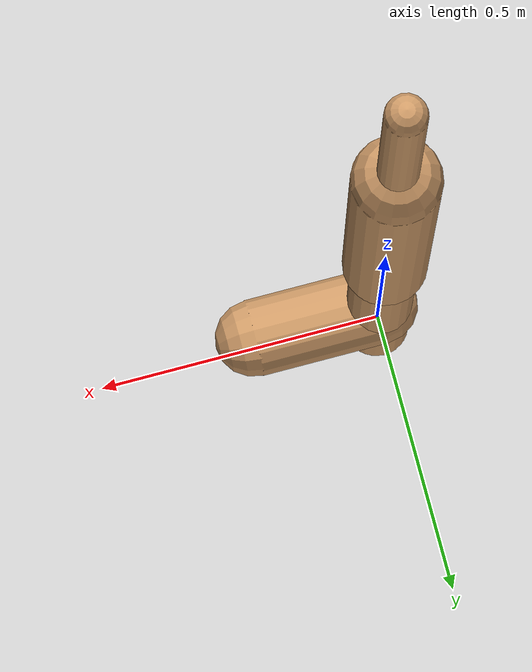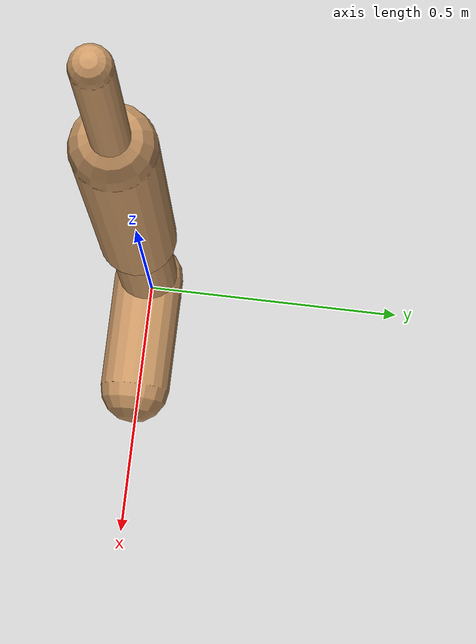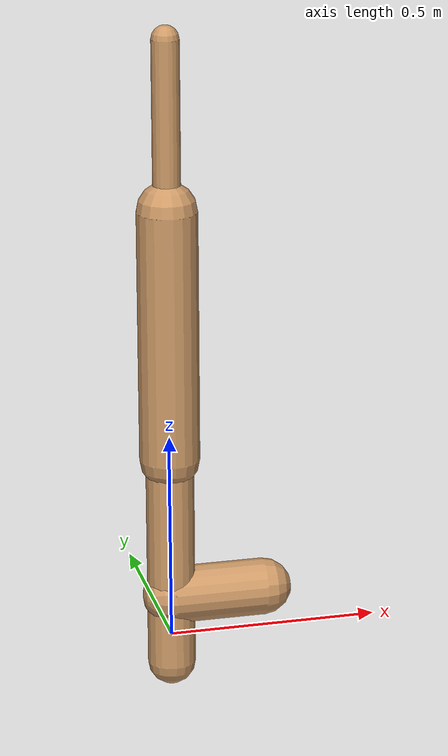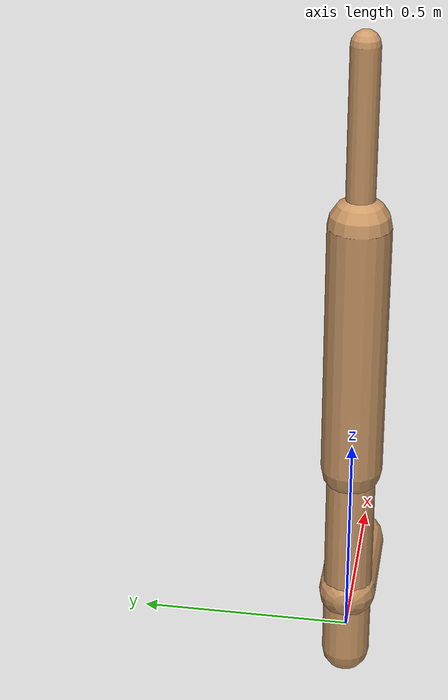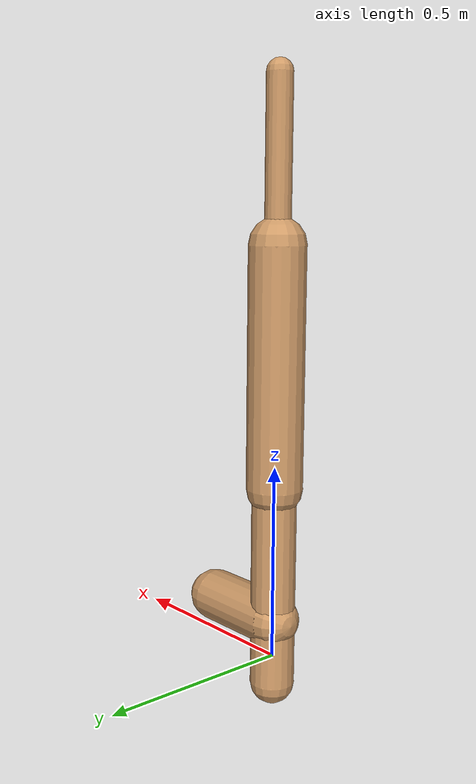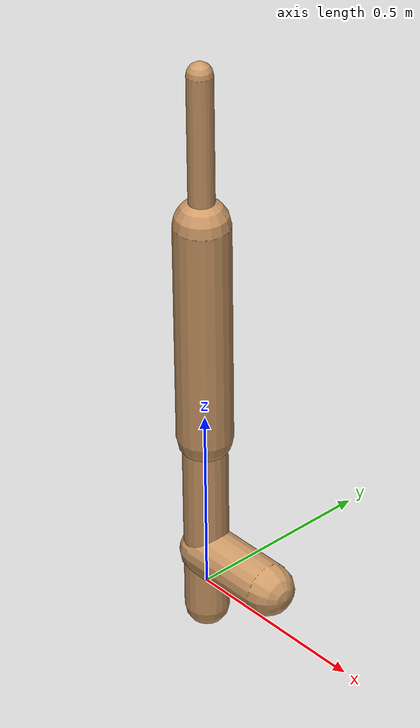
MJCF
<mujoco model="walker2d">
  <compiler angle="degree" coordinate="global" inertiafromgeom="true" />
  <default>
    <joint armature="0.01" damping=".1" limited="true" />
    <geom conaffinity="0" condim="3" contype="1" density="1000" friction="0.8 .1 .1" rgba="0.8 0.6 .4 1" />
  </default>
  <option integrator="RK4" timestep="0.002" />
  <worldbody>

    <body name="torso" pos="0 0 0.32049254809197397">
      <joint armature="0" axis="1 0 0" damping="0" limited="false" name="ignorex" pos="0 0 0" stiffness="0" type="slide" />
      <joint armature="0" axis="0 0 1" damping="0" limited="false" name="ignorez" pos="0 0 0" ref="1.25" stiffness="0" type="slide" />
      <joint armature="0" axis="0 1 0" damping="0" limited="false" name="ignorey" pos="0 0 0" stiffness="0" type="hinge" />
      <geom fromto="0 0 1.45 0 0 1.05" name="torso_geom" size="0.032695911750194706" type="capsule" />
      <body name="thigh">
        <joint axis="0 -1 0" name="thigh_joint" pos="0 0 1.05" range="-150 0" type="hinge" />
        <geom fromto="0.0 0.0 1.05 0.0 0.0 0.448187740377486" name="thigh_geom" size="0.07147645872417387" type="capsule" />
        <body name="leg" pos="0.0 0.0 -0.151812259622514">
          <joint axis="0 -1 0" name="leg_joint" pos="0 0 0.6" range="-150 0" type="hinge" />
          <geom fromto="0.0 0.0 0.6 0.0 0.0 -0.06868028846945998" name="leg_geom" size="0.057181166979339094" type="capsule" />
          <body name="foot" pos="0.0 0.0 -0.16868028846945998">
            <joint axis="0 -1 0" name="foot_joint" pos="0 0 0.1" range="-45 45" type="hinge" />
            <geom fromto="-0.0 0.0 0.1 0.22473910172038547 0.0 0.1" name="foot_geom" size="0.06799279479499891" type="capsule" />
          </body>
        </body>
      </body>

      <body name="thigh_left">
        <joint axis="0 -1 0" name="thigh_left_joint" pos="0 0 1.05" range="-150 0" type="hinge" />
        <geom fromto="0.0 0.0 1.05 0.0 0.0 0.448187740377486" name="thigh_left_geom" rgba=".7 .3 .6 1" size="0.07147645872417387" type="capsule" />
        <body name="leg_left" pos="0.0 0.0 -0.151812259622514">
          <joint axis="0 -1 0" name="leg_left_joint" pos="0 0 0.6" range="-150 0" type="hinge" />
          <geom fromto="0.0 0.0 0.6 0.0 0.0 -0.06868028846945998" name="leg_left_geom" rgba=".7 .3 .6 1" size="0.057181166979339094" type="capsule" />
          <body name="foot_left" pos="0.0 0.0 -0.16868028846945998">
            <joint axis="0 -1 0" name="foot_left_joint" pos="0 0 0.1" range="-45 45" type="hinge" />
            <geom fromto="-0.0 0.0 0.1 0.22473910172038547 0.0 0.1" name="foot_left_geom" rgba=".7 .3 .6 1" size="0.06799279479499891" type="capsule" />
          </body>
        </body>
      </body>
    </body>
  </worldbody>
  <actuator>

    <motor ctrllimited="true" ctrlrange="-1.0 1.0" gear="100" joint="thigh_joint" />
    <motor ctrllimited="true" ctrlrange="-1.0 1.0" gear="100" joint="leg_joint" />
    <motor ctrllimited="true" ctrlrange="-1.0 1.0" gear="100" joint="foot_joint" />
    <motor ctrllimited="true" ctrlrange="-1.0 1.0" gear="100" joint="thigh_left_joint" />
    <motor ctrllimited="true" ctrlrange="-1.0 1.0" gear="100" joint="leg_left_joint" />
    <motor ctrllimited="true" ctrlrange="-1.0 1.0" gear="100" joint="foot_left_joint" />

  </actuator>
</mujoco>
